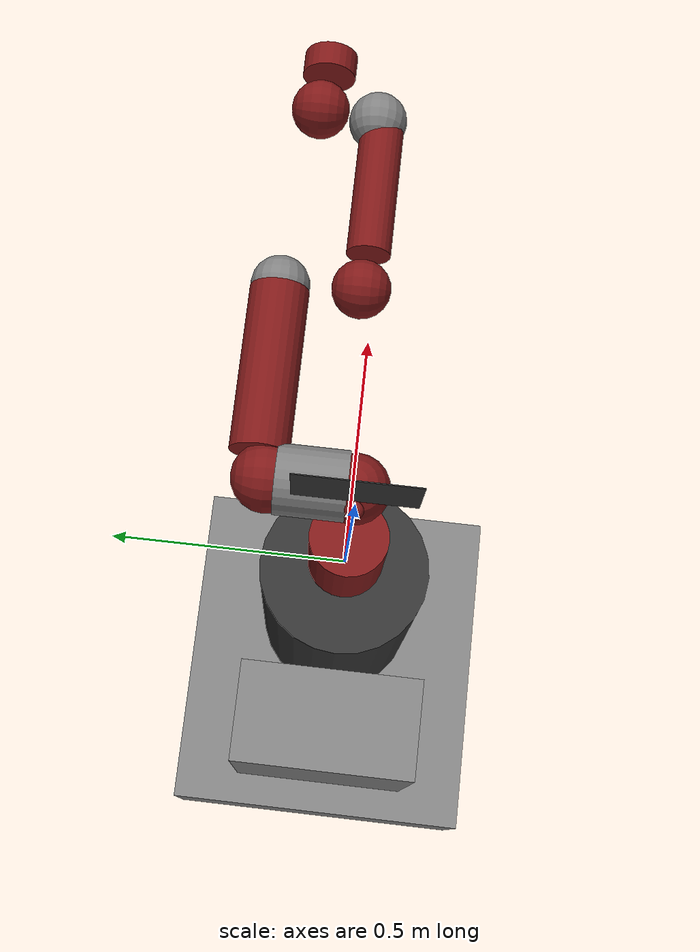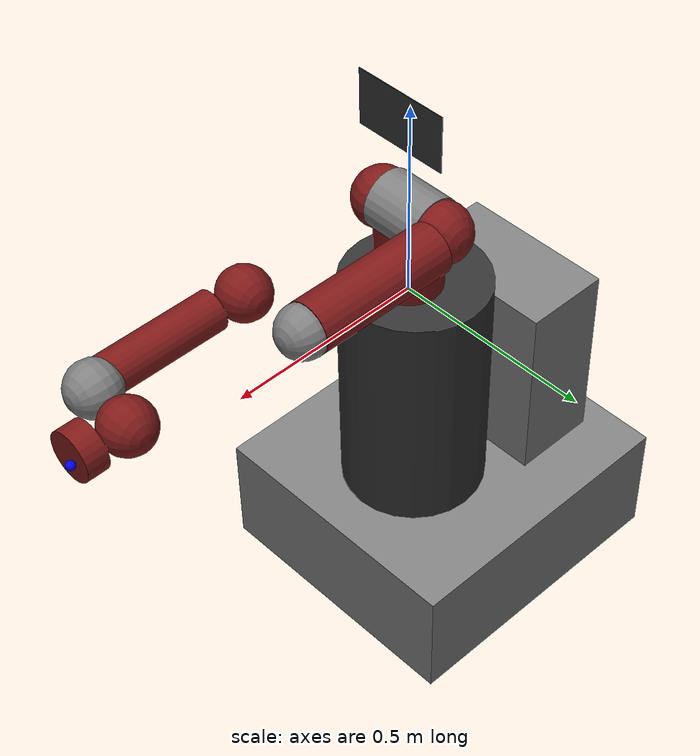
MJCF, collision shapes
<mujoco model="sawyer">
    <actuator>
    	<motor ctrllimited="true" ctrlrange="-80.0 80.0" joint="right_j0" name="torq_right_j0"/>
    	<motor ctrllimited="true" ctrlrange="-80.0 80.0" joint="right_j1" name="torq_right_j1"/>
    	<motor ctrllimited="true" ctrlrange="-40.0 40.0" joint="right_j2" name="torq_right_j2"/>
    	<motor ctrllimited="true" ctrlrange="-40.0 40.0" joint="right_j3" name="torq_right_j3"/>
    	<motor ctrllimited="true" ctrlrange="-9.0 9.0" joint="right_j4" name="torq_right_j4"/>
    	<motor ctrllimited="true" ctrlrange="-9.0 9.0" joint="right_j5" name="torq_right_j5"/>
    	<motor ctrllimited="true" ctrlrange="-9.0 9.0" joint="right_j6" name="torq_right_j6"/>
    </actuator>
    <asset>
    	<mesh file="../common_meshes/pedestal.stl" name="pedestal"/>
    	<mesh file="meshes/base.stl" name="base"/>
    	<mesh file="meshes/l0.stl" name="l0"/>
    	<mesh file="meshes/head.stl" name="head"/>
    	<mesh file="meshes/l1.stl" name="l1"/>
    	<mesh file="meshes/l2.stl" name="l2"/>
    	<mesh file="meshes/l3.stl" name="l3"/>
    	<mesh file="meshes/l4.stl" name="l4"/>
    	<mesh file="meshes/l5.stl" name="l5"/>
    	<mesh file="meshes/l6.stl" name="l6"/>

        <!-- Custom textures based on body names for domain randomization -->
        <texture type="cube" name="pedestal_tex" builtin="flat" width="100" height="100" rgb1="0.2 0.2 0.2" rgb2="0.2 0.2 0.2"/>
        <texture type="cube" name="torso_tex" builtin="flat" width="100" height="100" rgb1="0.2 0.2 0.2" rgb2="0.2 0.2 0.2"/>
        <texture type="cube" name="arm_tex" builtin="flat" width="100" height="100" rgb1="0.5 0.1 0.1" rgb2="0.5 0.1 0.1"/>
        <texture type="cube" name="head_tex" builtin="flat" width="100" height="100" rgb1="0.5 0.1 0.1" rgb2="0.5 0.1 0.1"/>
        <texture type="cube" name="screen_tex" builtin="flat" width="100" height="100" rgb1="0.2 0.2 0.2" rgb2="0.2 0.2 0.2"/>

        <!-- Custom mats based on body names for domain randomization -->
        <material name="pedestal_mat" texture="pedestal_tex"/>
        <material name="torso_mat" texture="torso_tex"/>
        <material name="arm_mat" texture="arm_tex"/>
        <material name="head_mat" texture="head_tex"/>
        <material name="screen_mat" texture="screen_tex"/>
    </asset>
    <worldbody>
    	<body name="base" pos="0 0 0">
			<!-- robot view -->
			<camera mode="fixed" name="robotview" pos="1.0 0 0.4" quat="0.653 0.271 0.271 0.653"/>
    		<inertial diaginertia="0 0 0" mass="0" pos="0 0 0"/>
    		<body name="controller_box" pos="0 0 0">
    			<inertial diaginertia="1.71363 1.27988 0.809981" mass="46.64" pos="-0.325 0 -0.38"/>
    			<geom pos="-0.325 0 -0.38" size="0.11 0.2 0.265" type="box" name="controller_box"/>
    		</body>
    		<body name="pedestal_feet" pos="0 0 0">
    			<inertial diaginertia="8.16095 9.59375 15.0785" mass="167.09" pos="-0.1225 0 -0.758"/>
    			<geom pos="-0.1225 0 -0.758" size="0.385 0.35 0.155" type="box" name="pedestal_feet"/>
    		</body>
    		<body name="torso" pos="0 0 0">
    			<inertial diaginertia="1e-08 1e-08 1e-08" mass="0.0001" pos="0 0 0"/>
    			<geom conaffinity="0" contype="0" group="1" size="0.05 0.05 0.05" type="box" name="torso" material="torso_mat"/>
    		</body>
    		<body name="pedestal" pos="0 0 0">
    			<inertial diaginertia="6.0869 5.81635 4.20915" mass="60.864" pos="0 0 0" quat="0.659267 -0.259505 -0.260945 0.655692"/>
    			<geom conaffinity="0" contype="0" group="1" mesh="pedestal" type="mesh" name="pedestal_vis1" material="pedestal_mat" />
    			<geom pos="-0.02 0 -0.29" rgba="0.2 0.2 0.2 1" size="0.18 0.31" type="cylinder" name="pedestal_col1"/>
    		</body>
    		<body name="right_arm_base_link" pos="0 0 0">
    			<inertial diaginertia="0.00740351 0.00681776 0.00672942" mass="2.0687" pos="-0.0006241 -2.8025e-05 0.065404" quat="-0.209285 0.674441 0.227335 0.670558"/>
    			<geom conaffinity="0" contype="0" group="1" mesh="base" type="mesh" name="base_vis" material="arm_mat"/>
    			<geom pos="0 0 0.12" rgba="0.5 0.1 0.1 1" size="0.08 0.12" type="cylinder" name="base_col"/>
    			<body name="right_l0" pos="0 0 0.08">
    				<inertial diaginertia="0.0651588 0.0510944 0.0186218" mass="5.3213" pos="0.024366 0.010969 0.14363" quat="0.894823 0.00899958 -0.170275 0.412573"/>
    				<joint axis="0 0 1" limited="true" name="right_j0" pos="0 0 0" range="-3.0503 3.0503"/>
    				<geom conaffinity="0" contype="0" group="1" mesh="l0" type="mesh" name="link0_visual" material="arm_mat"/>
    				<geom pos="0.08 0 0.23" rgba="0.5 0.1 0.1 1" size="0.07" name="link0_collision"/>
    				<body name="head" pos="0 0 0.2965">
    					<inertial diaginertia="0.0118334 0.00827089 0.00496574" mass="1.5795" pos="0.0053207 -2.6549e-05 0.1021" quat="0.999993 7.08405e-05 -0.00359857 -0.000626247"/>
    					<!--Don't want to control the head joint so remove it from the kinematic tree-->
    					<geom conaffinity="0" contype="0" group="1" mesh="head" type="mesh" name="head_visual" material="head_mat"/>
    					<geom pos="0 0 0.08" rgba="0.5 0.1 0.1 1" size="0.018" name="head_collision"/>
    					<body name="screen" pos="0.03 0 0.105" quat="0.5 0.5 0.5 0.5">
    						<inertial diaginertia="1e-08 1e-08 1e-08" mass="0.0001" pos="0 0 0"/>
    						<geom conaffinity="0" contype="0" group="1" size="0.12 0.07 0.001" type="box" name="screen_visual" material="screen_mat"/>
    						<geom rgba="0.2 0.2 0.2 1" size="0.001" name="screen_collision"/>
    					</body>
    					<body name="head_camera" pos="0.0228027 0 0.216572" quat="0.342813 -0.618449 0.618449 -0.342813">
    						<inertial diaginertia="0 0 0" mass="0" pos="0.0228027 0 0.216572" quat="0.342813 -0.618449 0.618449 -0.342813"/>
    					</body>
    				</body>
    				<body name="right_torso_itb" pos="-0.055 0 0.22" quat="0.707107 0 -0.707107 0">
    					<inertial diaginertia="1e-08 1e-08 1e-08" mass="0.0001" pos="0 0 0"/>
    				</body>
    				<body name="right_l1" pos="0.081 0.05 0.237" quat="0.5 -0.5 0.5 0.5">
    					<inertial diaginertia="0.0224339 0.0221624 0.0097097" mass="4.505" pos="-0.0030849 -0.026811 0.092521" quat="0.424888 0.891987 0.132364 -0.0794296"/>
    					<joint axis="0 0 1" limited="true" name="right_j1" pos="0 0 0" range="-3.8095 2.2736"/>
    					<geom conaffinity="0" contype="0" group="1" mesh="l1" type="mesh" name="link1_visual" material="arm_mat"/>
    					<geom pos="0 0 0.1225" rgba="0.5 0.1 0.1 1" size="0.07" name="link1_collision"/>
    					<body name="right_l2" pos="0 -0.14 0.1425" quat="0.707107 0.707107 0 0">
    						<inertial diaginertia="0.0257928 0.025506 0.00292515" mass="1.745" pos="-0.00016044 -0.014967 0.13582" quat="0.707831 -0.0524761 0.0516007 0.702537"/>
    						<joint axis="0 0 1" limited="true" name="right_j2" pos="0 0 0" range="-3.0426 3.0426"/>
    						<geom conaffinity="0" contype="0" group="1" mesh="l2" type="mesh" name="link2_visual" material="arm_mat"/>
    						<geom pos="0 0 0.08" rgba="0.5 0.1 0.1 1" size="0.06 0.17" type="cylinder" name="link2_collision"/>
    						<body name="right_l3" pos="0 -0.042 0.26" quat="0.707107 -0.707107 0 0">
    							<inertial diaginertia="0.0102404 0.0096997 0.00369622" mass="2.5097" pos="-0.0048135 -0.0281 -0.084154" quat="0.902999 0.385391 -0.0880901 0.168247"/>
    							<joint axis="0 0 1" limited="true" name="right_j3" pos="0 0 0" range="-3.0439 3.0439"/>
    							<geom conaffinity="0" contype="0" group="1" mesh="l3" type="mesh" name="link3_visual" material="arm_mat"/>
    							<geom pos="0 -0.01 -0.12" rgba="0.5 0.1 0.1 1" size="0.06" name="link3_collision"/>
    							<body name="right_l4" pos="0 -0.125 -0.1265" quat="0.707107 0.707107 0 0">
    								<inertial diaginertia="0.0136549 0.0135493 0.00127353" mass="1.1136" pos="-0.0018844 0.0069001 0.1341" quat="0.803612 0.031257 -0.0298334 0.593582"/>
    								<joint axis="0 0 1" limited="true" name="right_j4" pos="0 0 0" range="-2.9761 2.9761"/>
    								<geom conaffinity="0" contype="0" group="1" mesh="l4" type="mesh" name="link4_visual" material="arm_mat"/>
    								<geom pos="0 0 0.11" rgba="0.5 0.1 0.1 1" size="0.045 0.15" type="cylinder" name="link4_collision"/>
    								<body name="right_arm_itb" pos="-0.055 0 0.075" quat="0.707107 0 -0.707107 0">
    									<inertial diaginertia="1e-08 1e-08 1e-08" mass="0.0001" pos="0 0 0"/>
    								</body>
    								<body name="right_l5" pos="0 0.031 0.275" quat="0.707107 -0.707107 0 0">
    									<inertial diaginertia="0.00474131 0.00422857 0.00190672" mass="1.5625" pos="0.0061133 -0.023697 0.076416" quat="0.404076 0.9135 0.0473125 0.00158335"/>
    									<joint axis="0 0 1" limited="true" name="right_j5" pos="0 0 0" range="-2.9761 2.9761" damping="0.2"/>
    									<geom conaffinity="0" contype="0" group="1" mesh="l5" type="mesh" name="link5_visual" material="arm_mat"/>
    									<geom pos="0 0 0.1" rgba="0.5 0.1 0.1 1" size="0.06" name="link5_collision"/>
    									<body name="right_hand_camera" pos="0.039552 -0.033 0.0695" quat="0.707107 0 0.707107 0">
    										<inertial diaginertia="0 0 0" mass="0" pos="0.039552 -0.033 0.0695" quat="0.707107 0 0.707107 0"/>
    									</body>
    									<body name="right_wrist" pos="0 0 0.10541" quat="0.707107 0.707107 0 0">
    										<inertial diaginertia="0 0 0" mass="0" pos="0 0 0.10541" quat="0.707107 0.707107 0 0"/>
    									</body>
    									<body name="right_l6" pos="0 -0.11 0.1053" quat="0.0616248 0.06163 -0.704416 0.704416">
    										<inertial diaginertia="0.000360258 0.000311068 0.000214974" mass="0.3292" pos="-8.0726e-06 0.0085838 -0.0049566" quat="0.479044 0.515636 -0.513069 0.491322"/>
    										<joint axis="0 0 1" limited="true" name="right_j6" pos="0 0 0" range="-4.7124 4.7124" damping="0.1"/>
    										<geom conaffinity="0" contype="0" group="1" mesh="l6" type="mesh" name="link6_visual" material="arm_mat"/>
    										<geom pos="0 0.015 -0.01" rgba="0.5 0.1 0.1 1" size="0.055 0.025" type="cylinder" name="link6_collision"/>
    										<body name="right_hand" pos="0 0 0.024" quat="0.707105 0 0 0.707108">
    											<!-- This sites were added for visualization. They are all standardized between models-->
												<!-- Position mimics the gripper attachment point (right_hand) -->
												<!--  Y-axis should be perpendicular to grasping motion, and Z-axis should point out of the robot eef -->
												<site name="ee" pos="0 0 0" size="0.01 0.01 0.01" rgba="0 0 1 1" type="sphere" group="1"/>
												<site name="ee_x" pos="0 0 0" size="0.005 .1"  quat="0.707105 0.707108 0 0 " rgba="1 0 0 0" type="cylinder" group="1"/>
												<site name="ee_z" pos="0 0 0" size="0.005 .1" quat="0.707105 0 0 0.707108" rgba="0 0 1 0" type="cylinder" group="1"/>
												<site name="ee_y" pos="0 0 0" size="0.005 .1" quat="0.707105 0 0.707108 0 " rgba="0 1 0 0" type="cylinder" group="1"/>
												<!-- This camera points out from the eef. -->
                								<camera mode="fixed" name="eye_in_hand" pos="0.05 0 0" quat="0 0.707108 0.707108 0" fovy="75"/>
    											<!-- To add gripper -->
    										</body>
    									</body>
    								</body>
    								<body name="right_l4_2" pos="0 0 0">
    									<inertial diaginertia="1e-08 1e-08 1e-08" mass="1e-08" pos="1e-08 1e-08 1e-08" quat="0.820473 0.339851 -0.17592 0.424708"/>
    									<geom pos="0 0.01 0.26" size="0.06" name="right_l4_2"/>
    								</body>
    							</body>
    						</body>
    						<body name="right_l2_2" pos="0 0 0">
    							<inertial diaginertia="1e-08 1e-08 1e-08" mass="1e-08" pos="1e-08 1e-08 1e-08" quat="0.820473 0.339851 -0.17592 0.424708"/>
    							<geom pos="0 0 0.26" size="0.06" name="right_l2_2"/>
    						</body>
    					</body>
    					<body name="right_l1_2" pos="0 0 0">
    						<inertial diaginertia="1e-08 1e-08 1e-08" mass="1e-08" pos="1e-08 1e-08 1e-08" quat="0.820473 0.339851 -0.17592 0.424708"/>
    						<geom pos="0 0 0.035" size="0.07 0.07" type="cylinder" name="right_l1_2"/>
    					</body>
    				</body>
    			</body>
    		</body>
    	</body>
    </worldbody>
</mujoco>
